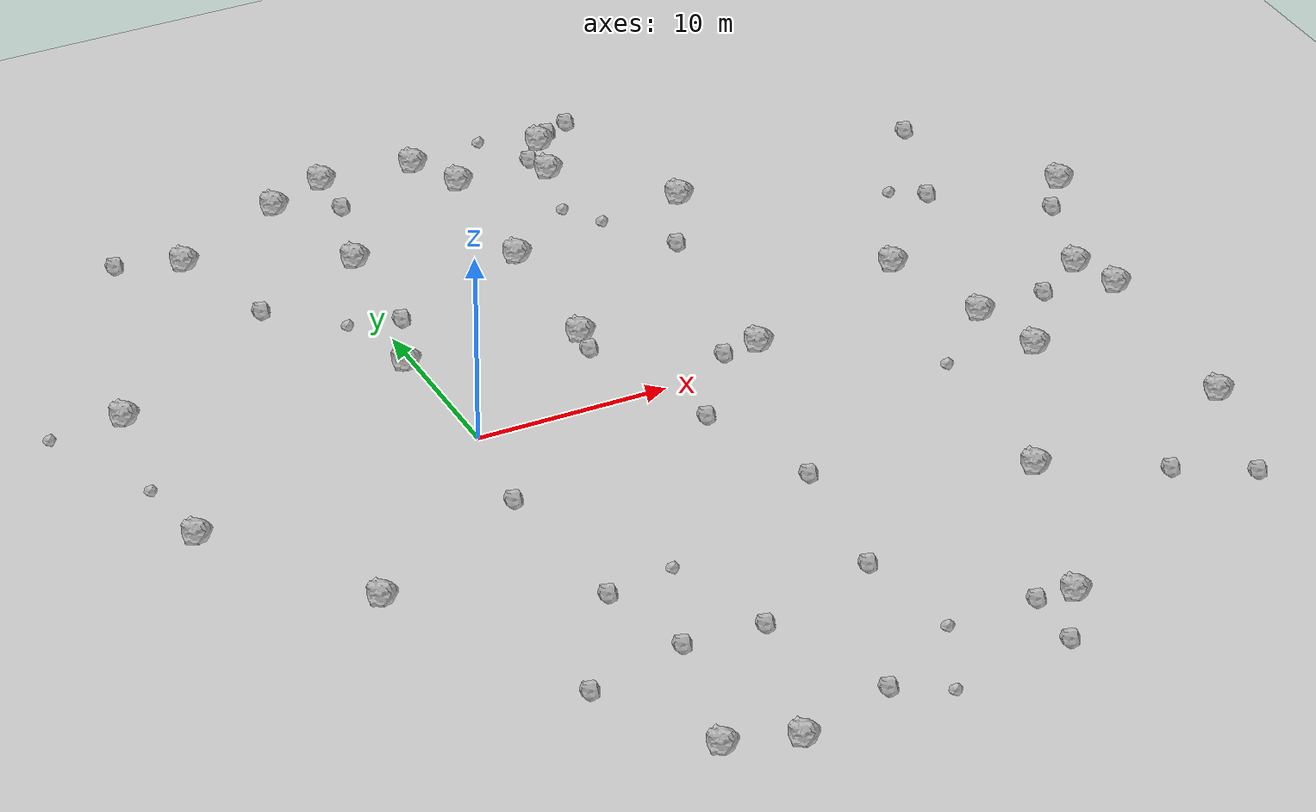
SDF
<sdf version="1.6">
 <world name="default">
  <include><uri>model://custom_ground</uri></include>
  <include><uri>model://sun</uri></include>
  <model name="rock1_0_0">
   <include><uri>model://rock1</uri><pose>13.84683944459482 21.146394671319882 0.5 0 0 0</pose></include>
  </model>
  <model name="rock1_0_1">
   <include><uri>model://rock1</uri><pose>26.95718200882083 -0.9758261307896241 0.5 0 0 0</pose></include>
  </model>
  <model name="rock1_0_2">
   <include><uri>model://rock1</uri><pose>-0.40927173895471824 7.377997038127816 0.5 0 0 0</pose></include>
  </model>
  <model name="rock1_0_3">
   <include><uri>model://rock1</uri><pose>27.837148940925594 -4.9036564211930695 0.5 0 0 0</pose></include>
  </model>
  <model name="rock1_0_4">
   <include><uri>model://rock1</uri><pose>7.8410137113628835 24.836867867896117 0.5 0 0 0</pose></include>
  </model>
  <model name="rock1_0_5">
   <include><uri>model://rock1</uri><pose>9.180823819089575 22.103956092478825 0.5 0 0 0</pose></include>
  </model>
  <model name="rock1_0_6">
   <include><uri>model://rock1</uri><pose>15.795699056922608 1.2979337149586136 0.5 0 0 0</pose></include>
  </model>
  <model name="rock1_0_7">
   <include><uri>model://rock1</uri><pose>34.3476817492514 -1.657714527392777 0.5 0 0 0</pose></include>
  </model>
  <model name="rock1_0_8">
   <include><uri>model://rock1</uri><pose>-15.333049134228053 -2.1050022323745345 0.5 0 0 0</pose></include>
  </model>
  <model name="rock1_0_9">
   <include><uri>model://rock1</uri><pose>33.561605116122095 0.9717005731866308 0.5 0 0 0</pose></include>
  </model>
  <model name="rock1_0_10">
   <include><uri>model://rock1</uri><pose>-9.685094197568409 -10.553885132304927 0.5 0 0 0</pose></include>
  </model>
  <model name="rock1_0_11">
   <include><uri>model://rock1</uri><pose>2.4976900423240664 -28.718915196016265 0.5 0 0 0</pose></include>
  </model>
  <model name="rock1_0_12">
   <include><uri>model://rock1</uri><pose>-0.9829980217120884 -27.653498648171194 0.5 0 0 0</pose></include>
  </model>
  <model name="rock1_0_13">
   <include><uri>model://rock1</uri><pose>1.284197212416899 17.399420837770954 0.5 0 0 0</pose></include>
  </model>
  <model name="rock1_0_14">
   <include><uri>model://rock1</uri><pose>-6.52589179411825 20.92784050779229 0.5 0 0 0</pose></include>
  </model>
  <model name="rock1_0_15">
   <include><uri>model://rock1</uri><pose>8.372382921546844 6.009697056738069 0.5 0 0 0</pose></include>
  </model>
  <model name="rock1_0_16">
   <include><uri>model://rock1</uri><pose>8.775401275050797 14.178896335801163 0.5 0 0 0</pose></include>
  </model>
  <model name="rock1_0_17">
   <include><uri>model://rock1</uri><pose>-0.3037480481098065 24.01722548451933 0.5 0 0 0</pose></include>
  </model>
  <model name="rock1_0_18">
   <include><uri>model://rock1</uri><pose>14.680359377006688 24.0045189042443 0.5 0 0 0</pose></include>
  </model>
  <model name="rock1_0_19">
   <include><uri>model://rock1</uri><pose>33.68630226742499 -12.528484317581832 0.5 0 0 0</pose></include>
  </model>
  <model name="rock1_0_20">
   <include><uri>model://rock1</uri><pose>2.8954675689984484 25.312186458279704 0.5 0 0 0</pose></include>
  </model>
  <model name="rock1_0_21">
   <include><uri>model://rock1</uri><pose>18.740531835735418 15.830617879196062 0.5 0 0 0</pose></include>
  </model>
  <model name="rock1_0_22">
   <include><uri>model://rock1</uri><pose>36.987644242573715 8.546518557200194 0.5 0 0 0</pose></include>
  </model>
  <model name="rock1_0_23">
   <include><uri>model://rock1</uri><pose>22.50625865034388 -14.263048425454581 0.5 0 0 0</pose></include>
  </model>
  <model name="rock1_0_24">
   <include><uri>model://rock1</uri><pose>25.33503943800742 5.050084090721995 0.5 0 0 0</pose></include>
  </model>
  <model name="rock1_0_25">
   <include><uri>model://rock1</uri><pose>18.88371295668035 -24.259120188658386 0.5 0 0 0</pose></include>
  </model>
  <model name="rock1_0_26">
   <include><uri>model://rock1</uri><pose>-14.584592439237106 8.846173603013469 0.5 0 0 0</pose></include>
  </model>
  <model name="rock2_0_0">
   <include><uri>model://rock2</uri><pose>11.440673604744944 -17.958519172436162 0.3 0 0 0</pose></include>
  </model>
  <model name="rock2_0_1">
   <include><uri>model://rock2</uri><pose>13.396429087370919 22.66915580705217 0.3 0 0 0</pose></include>
  </model>
  <model name="rock2_0_2">
   <include><uri>model://rock2</uri><pose>-4.9098451540682255 14.983354755036672 0.3 0 0 0</pose></include>
  </model>
  <model name="rock2_0_3">
   <include><uri>model://rock2</uri><pose>32.285971967408486 16.69133236886831 0.3 0 0 0</pose></include>
  </model>
  <model name="rock2_0_4">
   <include><uri>model://rock2</uri><pose>16.753350601967227 -27.324300967799424 0.3 0 0 0</pose></include>
  </model>
  <model name="rock2_0_5">
   <include><uri>model://rock2</uri><pose>2.727990867443104 22.528007357701703 0.3 0 0 0</pose></include>
  </model>
  <model name="rock2_0_6">
   <include><uri>model://rock2</uri><pose>16.77334550539741 25.33212780569658 0.3 0 0 0</pose></include>
  </model>
  <model name="rock2_0_7">
   <include><uri>model://rock2</uri><pose>30.70255055846274 -0.6628632915696784 0.3 0 0 0</pose></include>
  </model>
  <model name="rock2_0_8">
   <include><uri>model://rock2</uri><pose>4.976104124577599 -20.161831733039165 0.3 0 0 0</pose></include>
  </model>
  <model name="rock2_0_9">
   <include><uri>model://rock2</uri><pose>-0.9098532953234972 -5.8640727042641885 0.3 0 0 0</pose></include>
  </model>
  <model name="rock2_0_10">
   <include><uri>model://rock2</uri><pose>16.47771127631951 11.733223683046347 0.3 0 0 0</pose></include>
  </model>
  <model name="rock2_0_11">
   <include><uri>model://rock2</uri><pose>8.109892025404644 4.617402868855692 0.3 0 0 0</pose></include>
  </model>
  <model name="rock2_0_12">
   <include><uri>model://rock2</uri><pose>7.6121546595216145 -26.9872349157392 0.3 0 0 0</pose></include>
  </model>
  <model name="rock2_0_13">
   <include><uri>model://rock2</uri><pose>31.685610754900907 -19.247193441011312 0.3 0 0 0</pose></include>
  </model>
  <model name="rock2_0_14">
   <include><uri>model://rock2</uri><pose>1.0244298734617097 11.221619107060285 0.3 0 0 0</pose></include>
  </model>
  <model name="rock2_0_15">
   <include><uri>model://rock2</uri><pose>16.97035188172118 -23.89080889643359 0.3 0 0 0</pose></include>
  </model>
  <model name="rock2_0_16">
   <include><uri>model://rock2</uri><pose>30.160673116981236 10.388290896692077 0.3 0 0 0</pose></include>
  </model>
  <model name="rock2_0_17">
   <include><uri>model://rock2</uri><pose>-0.3686457133817811 -14.838950978948866 0.3 0 0 0</pose></include>
  </model>
  <model name="rock2_0_18">
   <include><uri>model://rock2</uri><pose>35.2553218822696 6.4323606795421 0.3 0 0 0</pose></include>
  </model>
  <model name="rock2_0_19">
   <include><uri>model://rock2</uri><pose>15.44926671347725 24.821119820687187 0.3 0 0 0</pose></include>
  </model>
  <model name="rock2_0_20">
   <include><uri>model://rock2</uri><pose>-9.822425233781129 22.20148986236675 0.3 0 0 0</pose></include>
  </model>
  <model name="rock2_0_21">
   <include><uri>model://rock2</uri><pose>-4.433050180551097 -21.330819021355232 0.3 0 0 0</pose></include>
  </model>
  <model name="rock2_0_22">
   <include><uri>model://rock2</uri><pose>10.50472501497405 -3.3805236209735696 0.3 0 0 0</pose></include>
  </model>
  <model name="rock2_0_23">
   <include><uri>model://rock2</uri><pose>13.798685972757426 1.245237372755522 0.3 0 0 0</pose></include>
  </model>
  <model name="rock2_0_24">
   <include><uri>model://rock2</uri><pose>0.8686764597434475 -19.94654454332095 0.3 0 0 0</pose></include>
  </model>
  <model name="rock2_0_25">
   <include><uri>model://rock2</uri><pose>12.514384085866212 -10.07221025684613 0.3 0 0 0</pose></include>
  </model>
  <model name="rock2_0_26">
   <include><uri>model://rock2</uri><pose>28.102656592073167 -17.24488456831433 0.3 0 0 0</pose></include>
  </model>
  <model name="rock3_0_0">
   <include><uri>model://rock3</uri><pose>12.333533930479561 -23.94415542734754 0.2 0 0 0</pose></include>
  </model>
  <model name="rock3_0_1">
   <include><uri>model://rock3</uri><pose>12.793105835156602 17.372187130169436 0.2 0 0 0</pose></include>
  </model>
  <model name="rock3_0_2">
   <include><uri>model://rock3</uri><pose>28.550954192712126 11.477207831813544 0.2 0 0 0</pose></include>
  </model>
  <model name="rock3_0_3">
   <include><uri>model://rock3</uri><pose>11.83311054856151 25.517287518024922 0.2 0 0 0</pose></include>
  </model>
  <model name="rock3_0_4">
   <include><uri>model://rock3</uri><pose>23.173582735275332 -4.37003701495194 0.2 0 0 0</pose></include>
  </model>
  <model name="rock3_0_5">
   <include><uri>model://rock3</uri><pose>-18.522020429342156 8.657425080889965 0.2 0 0 0</pose></include>
  </model>
  <model name="rock3_0_6">
   <include><uri>model://rock3</uri><pose>-1.5801956771310621 11.892818224721879 0.2 0 0 0</pose></include>
  </model>
  <model name="rock3_0_7">
   <include><uri>model://rock3</uri><pose>14.089845177882943 15.393621134741451 0.2 0 0 0</pose></include>
  </model>
  <model name="rock3_0_8">
   <include><uri>model://rock3</uri><pose>3.266703346733145 -14.216768889731156 0.2 0 0 0</pose></include>
  </model>
  <model name="rock3_0_9">
   <include><uri>model://rock3</uri><pose>-15.841968276694862 2.4484479960060455 0.2 0 0 0</pose></include>
  </model>
  <model name="rock3_0_10">
   <include><uri>model://rock3</uri><pose>10.237291506385166 -28.463679720875195 0.2 0 0 0</pose></include>
  </model>
 </world>
</sdf>
